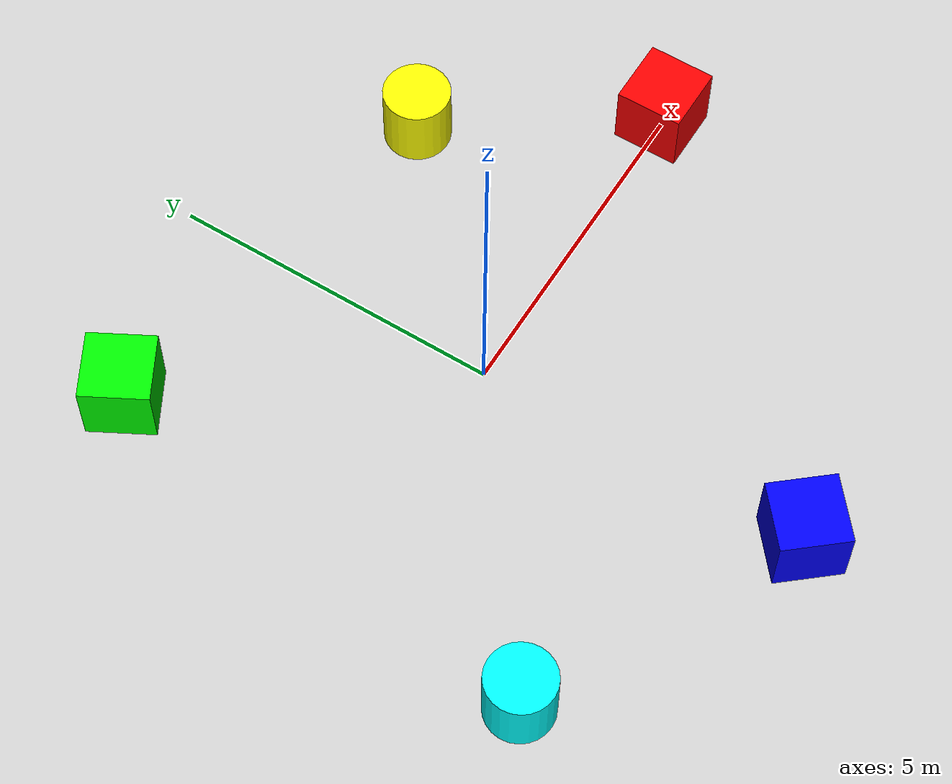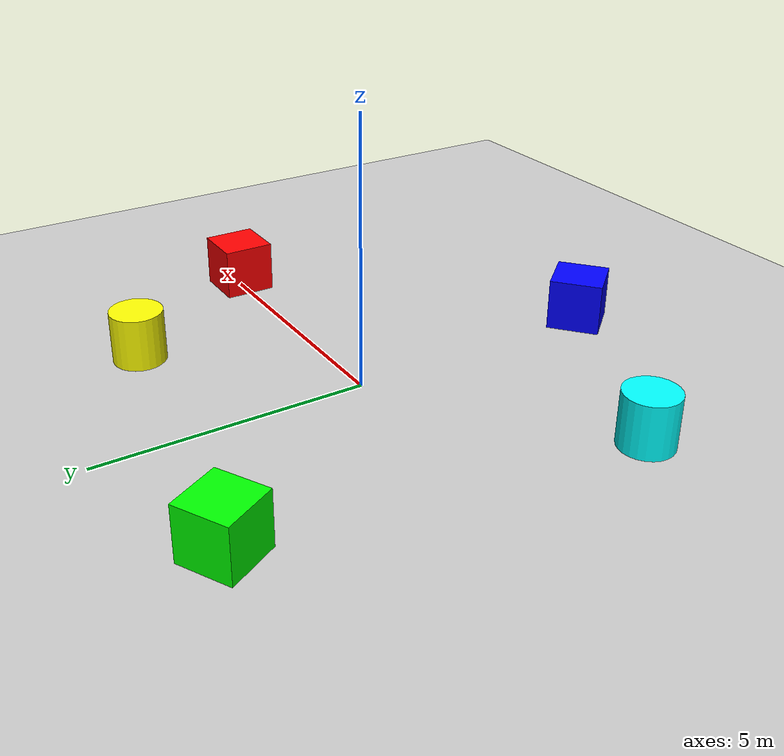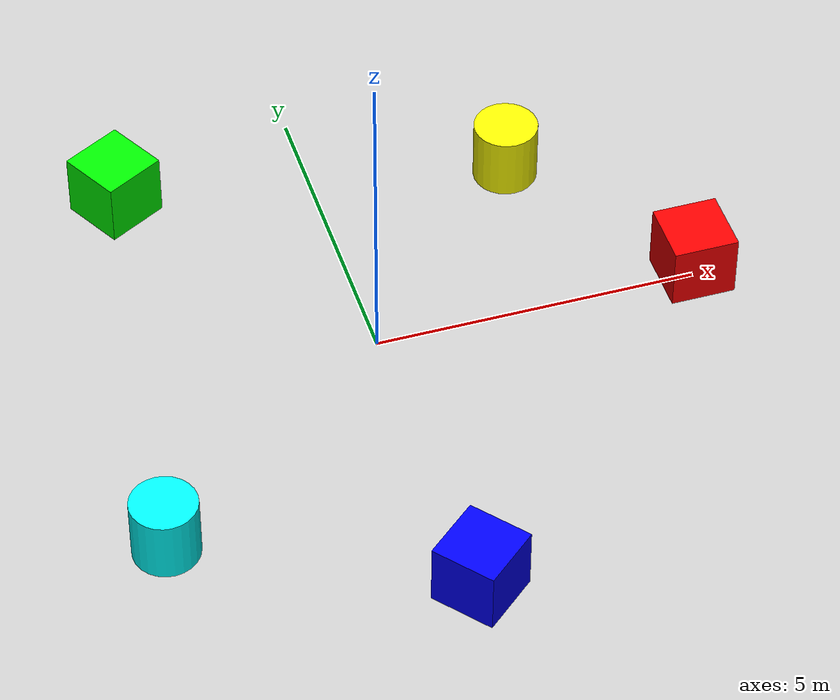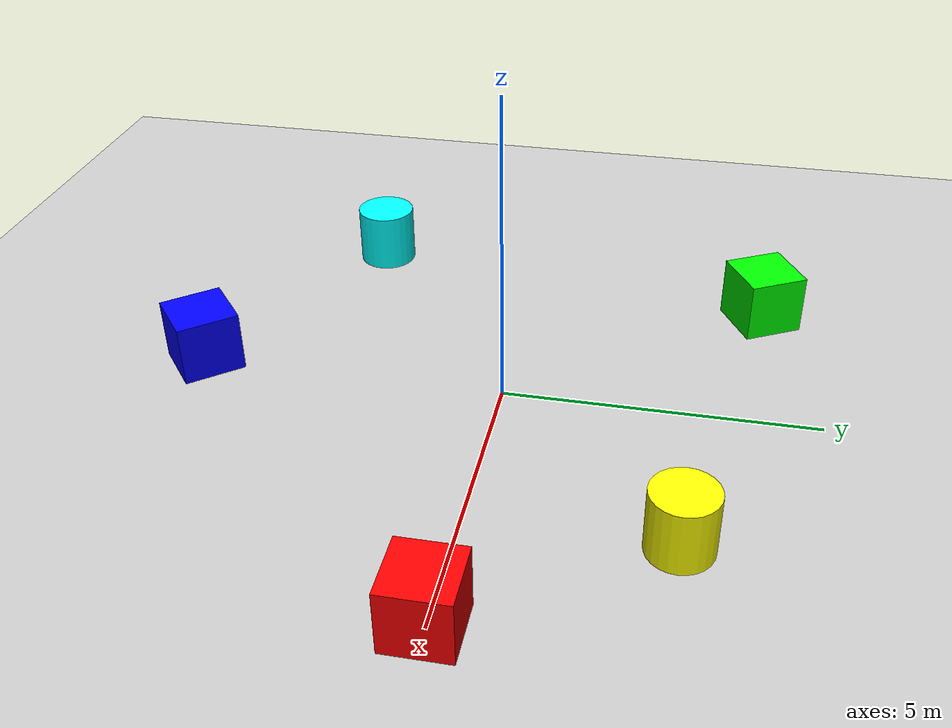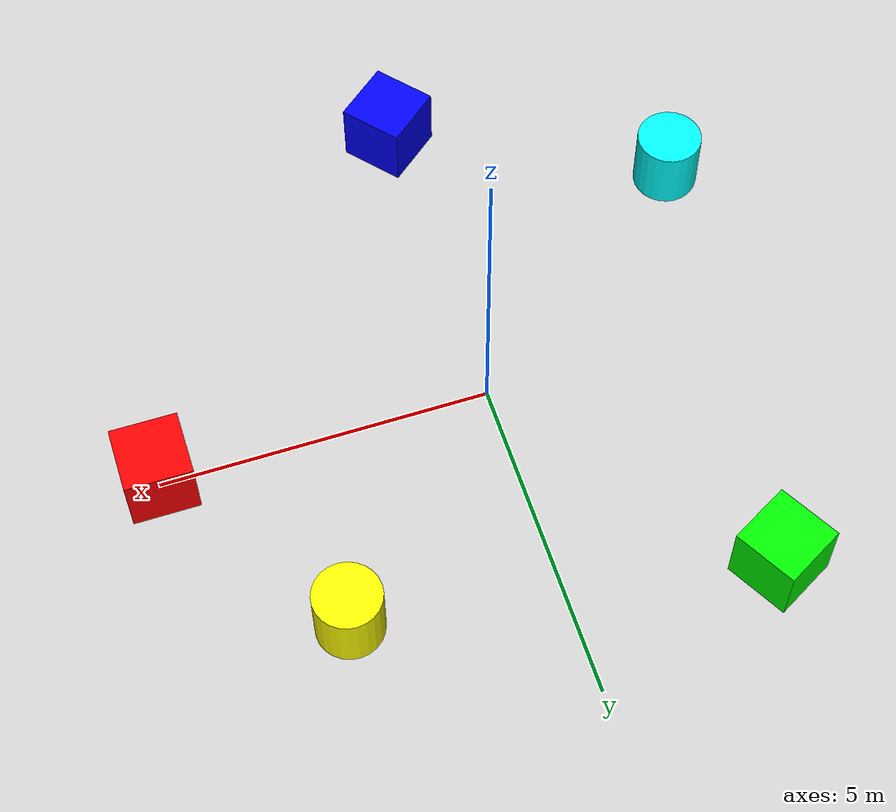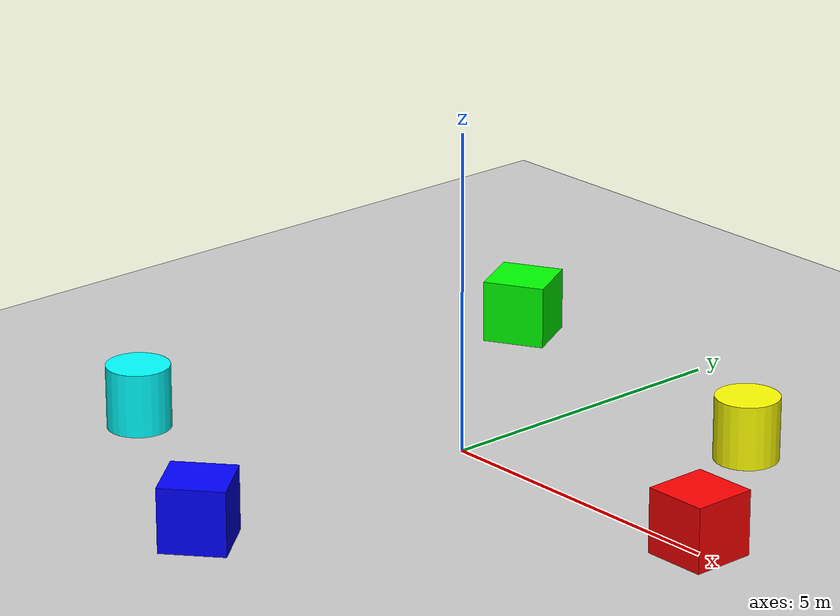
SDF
<?xml version="1.0"?>
<sdf version="1.8">
    <world name="default">
        <physics name="1ms" type="bullet-featherstone">
            <max_step_size>0.001</max_step_size>
            <real_time_factor>1.0</real_time_factor>
        </physics>

        <!-- Plugins -->
        <plugin
            filename="gz-sim-physics-system"
            name="gz::sim::systems::Physics">
        </plugin>
        <plugin
            filename="gz-sim-sensors-system"
            name="gz::sim::systems::Sensors">
            <render_engine>ogre2</render_engine>
        </plugin>
        <plugin
            filename="gz-sim-user-commands-system"
            name="gz::sim::systems::UserCommands">
        </plugin>
        <plugin
            filename="gz-sim-scene-broadcaster-system"
            name="gz::sim::systems::SceneBroadcaster">
        </plugin>
        <plugin
            filename="gz-sim-contact-system"
            name="gz::sim::systems::Contact">
        </plugin>

        <!-- Lights -->
        <light type="directional" name="sun">
            <cast_shadows>true</cast_shadows>
            <pose>0 0 10 0 0 0</pose>
            <diffuse>0.8 0.8 0.8 1</diffuse>
            <specular>0.2 0.2 0.2 1</specular>
            <attenuation>
                <range>1000</range>
                <constant>0.9</constant>
                <linear>0.01</linear>
                <quadratic>0.001</quadratic>
            </attenuation>
            <direction>-0.5 0.1 -0.9</direction>
        </light>

        <!-- Ground Plane -->
        <model name="ground_plane">
            <static>true</static>
            <link name="link">
                <collision name="collision">
                    <geometry>
                        <plane>
                            <normal>0 0 1</normal>
                            <size>100 100</size>
                        </plane>
                    </geometry>
                </collision>
                <visual name="visual">
                    <geometry>
                        <plane>
                            <normal>0 0 1</normal>
                            <size>100 100</size>
                        </plane>
                    </geometry>
                    <material>
                        <ambient>0.8 0.8 0.8 1</ambient>
                        <diffuse>0.8 0.8 0.8 1</diffuse>
                        <specular>0.8 0.8 0.8 1</specular>
                    </material>
                </visual>
            </link>
        </model>

        <!-- Box 1 -->
        <model name="box1">
            <pose>5 0 0.5 0 0 0</pose>
            <link name="box_link">
                <inertial>
                    <inertia>
                        <ixx>1</ixx>
                        <ixy>0</ixy>
                        <ixz>0</ixz>
                        <iyy>1</iyy>
                        <iyz>0</iyz>
                        <izz>1</izz>
                    </inertia>
                    <mass>1.0</mass>
                </inertial>
                <collision name="box_collision">
                    <geometry>
                        <box>
                            <size>1 1 1</size>
                        </box>
                    </geometry>
                </collision>
                <visual name="box_visual">
                    <geometry>
                        <box>
                            <size>1 1 1</size>
                        </box>
                    </geometry>
                    <material>
                        <ambient>1 0 0 1</ambient>
                        <diffuse>1 0 0 1</diffuse>
                        <specular>1 0 0 1</specular>
                    </material>
                </visual>
            </link>
            <static>true</static>
        </model>

        <!-- Box 2 -->
        <model name="box2">
            <pose>-3 4 0.5 0 0 0.5</pose>
            <link name="box_link">
                <inertial>
                    <inertia>
                        <ixx>1</ixx>
                        <ixy>0</ixy>
                        <ixz>0</ixz>
                        <iyy>1</iyy>
                        <iyz>0</iyz>
                        <izz>1</izz>
                    </inertia>
                    <mass>1.0</mass>
                </inertial>
                <collision name="box_collision">
                    <geometry>
                        <box>
                            <size>1 1 1</size>
                        </box>
                    </geometry>
                </collision>
                <visual name="box_visual">
                    <geometry>
                        <box>
                            <size>1 1 1</size>
                        </box>
                    </geometry>
                    <material>
                        <ambient>0 1 0 1</ambient>
                        <diffuse>0 1 0 1</diffuse>
                        <specular>0 1 0 1</specular>
                    </material>
                </visual>
            </link>
            <static>true</static>
        </model>

        <!-- Box 3 -->
        <model name="box3">
            <pose>0 -5 0.5 0 0 0.7</pose>
            <link name="box_link">
                <inertial>
                    <inertia>
                        <ixx>1</ixx>
                        <ixy>0</ixy>
                        <ixz>0</ixz>
                        <iyy>1</iyy>
                        <iyz>0</iyz>
                        <izz>1</izz>
                    </inertia>
                    <mass>1.0</mass>
                </inertial>
                <collision name="box_collision">
                    <geometry>
                        <box>
                            <size>1 1 1</size>
                        </box>
                    </geometry>
                </collision>
                <visual name="box_visual">
                    <geometry>
                        <box>
                            <size>1 1 1</size>
                        </box>
                    </geometry>
                    <material>
                        <ambient>0 0 1 1</ambient>
                        <diffuse>0 0 1 1</diffuse>
                        <specular>0 0 1 1</specular>
                    </material>
                </visual>
            </link>
            <static>true</static>
        </model>

        <!-- Cylinder 1 -->
        <model name="cylinder1">
            <pose>3 3 0.5 0 0 0</pose>
            <link name="cylinder_link">
                <inertial>
                    <inertia>
                        <ixx>0.1458</ixx>
                        <ixy>0</ixy>
                        <ixz>0</ixz>
                        <iyy>0.1458</iyy>
                        <iyz>0</iyz>
                        <izz>0.125</izz>
                    </inertia>
                    <mass>1.0</mass>
                </inertial>
                <collision name="cylinder_collision">
                    <geometry>
                        <cylinder>
                            <radius>0.5</radius>
                            <length>1.0</length>
                        </cylinder>
                    </geometry>
                </collision>
                <visual name="cylinder_visual">
                    <geometry>
                        <cylinder>
                            <radius>0.5</radius>
                            <length>1.0</length>
                        </cylinder>
                    </geometry>
                    <material>
                        <ambient>1 1 0 1</ambient>
                        <diffuse>1 1 0 1</diffuse>
                        <specular>1 1 0 1</specular>
                    </material>
                </visual>
            </link>
            <static>true</static>
        </model>

        <!-- Cylinder 2 -->
        <model name="cylinder2">
            <pose>-4 -3 0.5 0 0 0</pose>
            <link name="cylinder_link">
                <inertial>
                    <inertia>
                        <ixx>0.1458</ixx>
                        <ixy>0</ixy>
                        <ixz>0</ixz>
                        <iyy>0.1458</iyy>
                        <iyz>0</iyz>
                        <izz>0.125</izz>
                    </inertia>
                    <mass>1.0</mass>
                </inertial>
                <collision name="cylinder_collision">
                    <geometry>
                        <cylinder>
                            <radius>0.5</radius>
                            <length>1.0</length>
                        </cylinder>
                    </geometry>
                </collision>
                <visual name="cylinder_visual">
                    <geometry>
                        <cylinder>
                            <radius>0.5</radius>
                            <length>1.0</length>
                        </cylinder>
                    </geometry>
                    <material>
                        <ambient>0 1 1 1</ambient>
                        <diffuse>0 1 1 1</diffuse>
                        <specular>0 1 1 1</specular>
                    </material>
                </visual>
            </link>
            <static>true</static>
        </model>
    </world>
</sdf>
